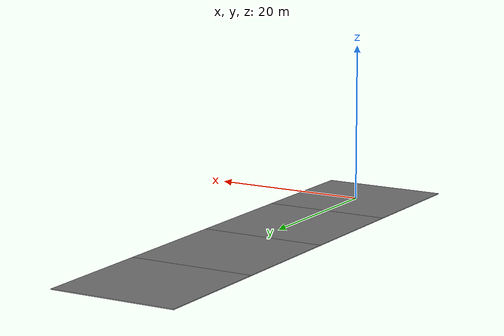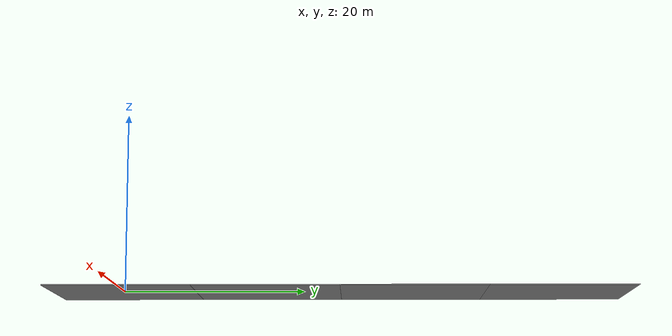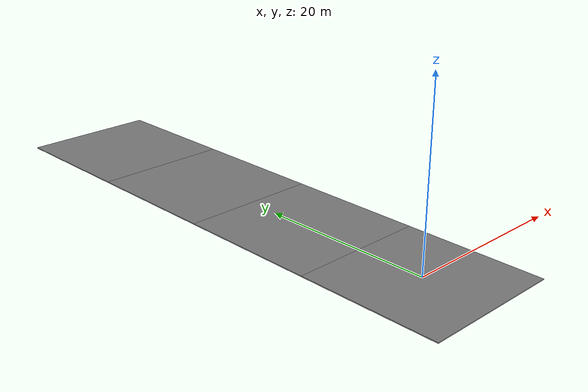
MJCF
<mujoco model="public-contact-panels-v25">
  <worldbody>
    <geom name="surface_0" type="box" pos="0 0 -.05" size="8 8 .05" contype="1" conaffinity="1" friction="1.0 .005 .0001" solref="0.02 1.0" solimp="0.9 0.95 0.001 0.5 2.0" />
    <geom name="surface_1" type="box" pos="0 16 -.05" size="8 8 .05" contype="1" conaffinity="1" friction="0.51 .005 .0001" solref="0.05 1.0" solimp="0.9 0.95 0.001 0.5 2.0" />
    <geom name="surface_2" type="box" pos="0 32 -.05" size="8 8 .05" contype="1" conaffinity="1" friction="1.0 .005 .0001" solref="0.08 1.0" solimp="0.9 0.95 0.001 0.5 2.0" />
    <geom name="surface_3" type="box" pos="0 48 -.05" size="8 8 .05" contype="1" conaffinity="1" friction="1.8 .005 .0001" solref="0.12000000000000001 1.0" solimp="0.9 0.95 0.001 0.5 2.0" />
  </worldbody>
</mujoco>
